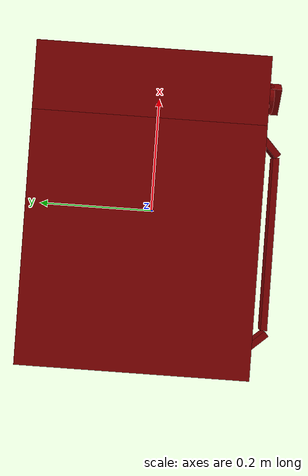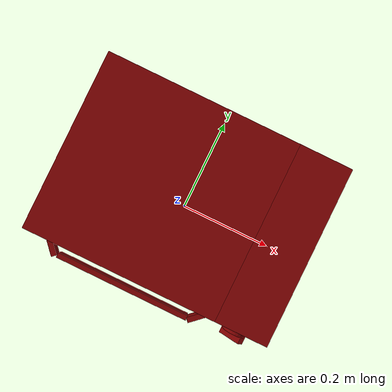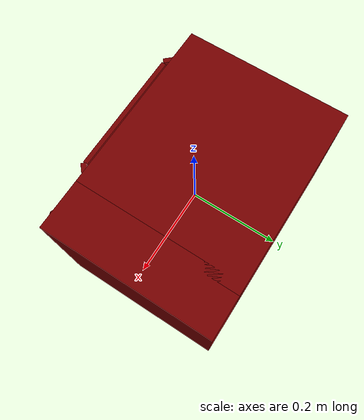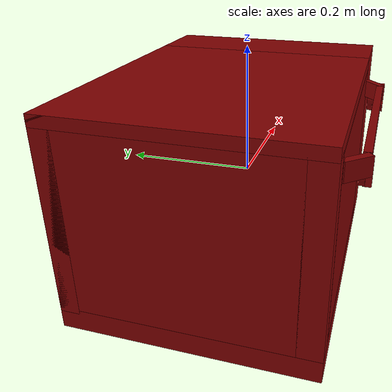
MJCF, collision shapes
<?xml version='1.0' encoding='UTF-8'?>
<mujoco model="model">
  <option timestep="0.002" gravity="0.0 0.0 -9.81"/>
  <compiler angle="radian"/>
  <asset>
    <mesh file="visuals/door.obj" name="door_vis"/>
    <mesh file="visuals/knob_temp.obj" name="knob_temp_vis"/>
    <mesh file="visuals/knob_time.obj" name="knob_time_vis"/>
    <mesh file="visuals/rack0.obj" name="rack0_vis"/>
    <mesh file="visuals/Body001.obj" name="Body001_vis"/>
    <mesh file="visuals/window.obj" name="window_vis"/>
    <texture file="visuals/T_BC001.png" name="Body001_material" type="2d"/>
    <material name="Body001_material" rgba="1 1 1 1.0" texture="Body001_material" shininess="0.141421377658844" specular="2"/>
    <texture file="visuals/T_BC001.png" name="door_material" type="2d"/>
    <material name="door_material" rgba="1 1 1 1.0" texture="door_material" shininess="0.241421377658844" specular="1"/>
    <texture file="visuals/T_BC001.png" name="window_material" type="2d"/>
    <material name="window_material" rgba="1 1 1 0.7896907329559326" texture="window_material" shininess="0.141421377658844" specular="0.3103448502657381"/>
    <texture file="visuals/T_BC001.png" name="knob_temp_material" type="2d"/>
    <material name="knob_temp_material" rgba="1 1 1 1.0" texture="knob_temp_material" shininess="0.141421377658844" specular="0.3103448502657381"/>
    <texture file="visuals/T_BC001.png" name="knob_time_material" type="2d"/>
    <material name="knob_time_material" rgba="1 1 1 1.0" texture="knob_time_material" shininess="0.141421377658844" specular="0.3103448502657381"/>
    <texture file="visuals/T_BC001.png" name="rack0_material" type="2d"/>
    <material name="rack0_material" rgba="1 1 1 1.0" texture="rack0_material" shininess="0.141421377658844" specular="2"/>
  </asset>
  <default>
    <default class="visual">
      <geom conaffinity="0" contype="0" group="1" type="mesh"/>
    </default>
    <default class="collision">
      <geom group="0" rgba="0.5 0 0 0.5"/>
    </default>
    <default class="spawn">
      <geom group="0" rgba="1 1 1 0.5" contype="0" conaffinity="0"/>
      <site group="0" rgba="1 1 1 0.5"/>
    </default>
    <default class="region">
      <geom group="1" conaffinity="0" contype="0" rgba="0 1 0 0"/>
    </default>
  </default>
  <worldbody>
    <body>
      <body name="object">
        <geom mesh="Body001_vis" type="mesh" solimp="0.998 0.998 0.001" solref="0.001 1" friction="0.95 0.3 0.1" class="visual" material="Body001_material"/>
        <geom class="collision" type="box" pos="-0.23984715 0.03170668 0.00923254" size="0.016103293746709824 0.16864113509655 0.1361086219549179" quat="1.0 0.0 0.0 0.0"/>
        <geom class="collision" type="box" pos="-0.04529931 0.01482415 -0.14198300" size="0.2106505185365677 0.18552252650260925 0.01835312321782112" quat="1.0 0.0 0.0 0.0"/>
        <geom class="collision" type="box" pos="-0.04692912 0.18550963 0.01382422" size="0.20902132987976074 0.014838124625384808 0.14651153981685638" quat="1.0 0.0 0.0 0.0"/>
        <geom class="collision" type="box" pos="0.20139016 0.01482457 0.00000001" size="0.05456048622727394 0.18552327156066895 0.16033624112606049" quat="1.0 0.0 0.0 0.0"/>
        <geom class="collision" type="box" pos="-0.04485186 0.01482443 0.15161811" size="0.2110985964536667 0.18552300333976746 0.008718099445104599" quat="1.0 0.0 0.0 0.0"/>
        <geom class="collision" type="box" pos="-0.22304827 0.03042528 -0.00378089" size="0.008748199790716171 0.14672890305519104 0.016295943409204483" quat="1.0 0.0 0.0 0.0"/>
        <geom class="collision" type="box" pos="-0.22304827 0.03042528 -0.04195267" size="0.008748199790716171 0.14672890305519104 0.016295943409204483" quat="1.0 0.0 0.0 0.0"/>
        <geom class="collision" type="box" pos="0.14577189 0.03042528 -0.00440377" size="0.008748222142457962 0.1467292159795761 0.01597226783633232" quat="1.0 0.0 0.0 0.0"/>
        <geom class="collision" type="box" pos="0.14577189 0.03042528 -0.04197511" size="0.008748199790716171 0.14672890305519104 0.016295943409204483" quat="1.0 0.0 0.0 0.0"/>
        <geom class="collision" type="box" pos="-0.24124980 -0.15325397 0.00923254" size="0.014700651168823242 0.01744471862912178 0.13610891997814178" quat="1.0 0.0 0.0 0.0"/>
        <body name="door">
          <joint axis="1.0 0.0 0.0" pos="-0.03938596 -0.16686032 -0.12208751" limited="true" name="door_joint" range="0.0 1.4707963267948966" type="hinge" damping="1" frictionloss="1" armature=".01" stiffness="0.5" springref="-0.4"/>
          <geom mesh="door_vis" type="mesh" solimp="0.998 0.998 0.001" solref="0.001 1" friction="0.95 0.3 0.1" class="visual" material="door_material"/>
          <geom class="collision" type="box" pos="-0.03934085 -0.16711044 0.01127480" size="0.18538400530815125 0.0035882568918168545 0.12862595915794373" quat="1.0 0.0 0.0 0.0" name="door_main"/>
          <geom class="collision" type="box" pos="0.11659695 -0.18369199 0.11418281" size="0.019696667790412903 0.005493865814059973 0.013131000101566315" quat="1.814838412883546e-07 0.9320859909057617 0.36223703622817993 7.053017014868601e-08"/>
          <geom class="collision" type="box" pos="-0.04008418 -0.19370061 0.11387166" size="0.1399654597043991 0.005172303412109613 0.01313098892569542" quat="1.0 0.0 0.0 0.0" name="door_handle_main"/>
          <geom class="collision" type="box" pos="-0.19830747 -0.18340960 0.11418281" size="0.020143670961260796 0.005374647676944733 0.013131000101566315" quat="0.9129475355148315 0.0 -0.0 -0.4080769717693329"/>
          <body name="window">
            <geom mesh="window_vis" type="mesh" solimp="0.998 0.998 0.001" solref="0.001 1" friction="0.95 0.3 0.1" class="visual" material="window_material"/>
            <geom class="collision" type="box" pos="-0.04120736 -0.16582557 0.00830135" size="0.1293821483850479 0.001589049817994237 0.07643870264291763" quat="1.0 0.0 0.0 0.0"/>
          </body>
        </body>
        <body name="knob_temp">
          <joint axis="0.0 1.0 0.0" pos="0.20182766 -0.18567112 0.07832259" limited="true" name="knob_temp_joint" range="0.0 4.39822971502571" type="hinge" damping="0.05" frictionloss="0.75" armature="1"/>
          <geom mesh="knob_temp_vis" type="mesh" solimp="0.998 0.998 0.001" solref="0.001 1" friction="0.95 0.3 0.1" class="visual" material="knob_temp_material"/>
          <geom class="collision" type="box" pos="0.20195419 -0.19133181 0.07804938" size="0.009441480040550232 0.009057309478521347 0.024213304743170738" quat="0.894934356212616 0.0 0.44619786739349365 0.0" name="knob_temp_main" friction="100 0.5 0.01"/>
          <geom class="collision" type="cylinder" pos="0.20174049 -0.18061746 0.07826789" size="0.024659136310219765 0.007099910639226437" quat="0.7071067094802856 0.7071068286895752 0.0 0.0" friction="100 0.5 0.01"/>
        </body>
        <body name="knob_time">
          <joint axis="0.0 1.0 0.0" pos="0.20206685 -0.18269534 -0.07867224" limited="true" name="knob_time_joint" range="0.0 3.9269908169872414" type="hinge" damping="0.05" armature="1" frictionloss="0.75"/>
          <geom mesh="knob_time_vis" type="mesh" solimp="0.998 0.998 0.001" solref="0.001 1" friction="0.95 0.3 0.1" class="visual" material="knob_time_material"/>
          <geom class="collision" type="box" pos="0.20159622 -0.18934749 -0.07830635" size="0.009441480040550232 0.009057312272489071 0.024213304743170738" quat="1.0 0.0 0.0 0.0" name="knob_time_main" friction="100 0.5 0.01"/>
          <geom class="collision" type="cylinder" pos="0.20227078 -0.17881140 -0.07853217" size="0.024659136310219765 0.0063616069965064526" quat="0.7071067094802856 0.7071068286895752 0.0 0.0" friction="100 0.5 0.01"/>
        </body>
        <body name="rack0">
          <geom class="region" name="reg_rack0" type="box" pos="-0.038268575000000006 0.011495109999999996 0.05530337" size="0.15086523500000001 0.11990045999999999 0.08626231"/>
          <joint axis="0.0 -1.0 0.0" pos="-0.03900466 0.01150059 -0.02509472" limited="true" name="rack0_joint" range="0.0 0.22" type="slide" damping="1" frictionloss="1" armature=".01" stiffness="0.05"/>
          <geom mesh="rack0_vis" type="mesh" solimp="0.998 0.998 0.001" solref="0.001 1" friction="0.95 0.3 0.1" class="visual" material="rack0_material"/>
          <geom class="collision" type="box" pos="-0.03834916 0.01171809 -0.03312175" size="0.1529725193977356 0.12284987419843674 0.0030371074099093676" quat="1.0 0.0 0.0 0.0"/>
          <geom class="collision" type="box" pos="-0.21134125 0.01163783 -0.02340786" size="0.009668748825788498 0.12300089001655579 0.001667578355409205" quat="1.0 0.0 0.0 0.0"/>
          <geom class="collision" type="box" pos="-0.19678137 0.01163126 -0.02819809" size="0.009363675490021706 0.12300733476877213 0.0017728143138810992" quat="0.9440328478813171 -2.0632493047401113e-08 0.3298514187335968 7.209131958063608e-09"/>
          <geom class="collision" type="box" pos="0.12001006 0.01163126 -0.02819809" size="0.009363675490021706 0.12300733476877213 0.001772815827280283" quat="7.127249546101666e-08 -0.9440328478813171 -2.4903089368422116e-08 -0.3298514187335968"/>
          <geom class="collision" type="box" pos="0.13322128 0.01163783 -0.02340786" size="0.009668748825788498 0.12300089001655579 0.0016675770748406649" quat="1.0 0.0 0.0 0.0"/>
        </body>
        <geom class="region" name="reg_main" type="box" pos="0.0 0.014824564999999998 0.0" size="0.25695045 0.186523275 0.16133623"/>
      </body>
    </body>
  </worldbody>
  <actuator>
    <motor name="door_joint_actuator" joint="door_joint" gear="20"/>
    <motor name="knob_temp_joint_actuator" joint="knob_temp_joint" gear="10"/>
    <motor name="knob_time_joint_actuator" joint="knob_time_joint" gear="10"/>
    <motor name="rack0_joint_actuator" joint="rack0_joint" gear="30"/>
  </actuator>
</mujoco>
